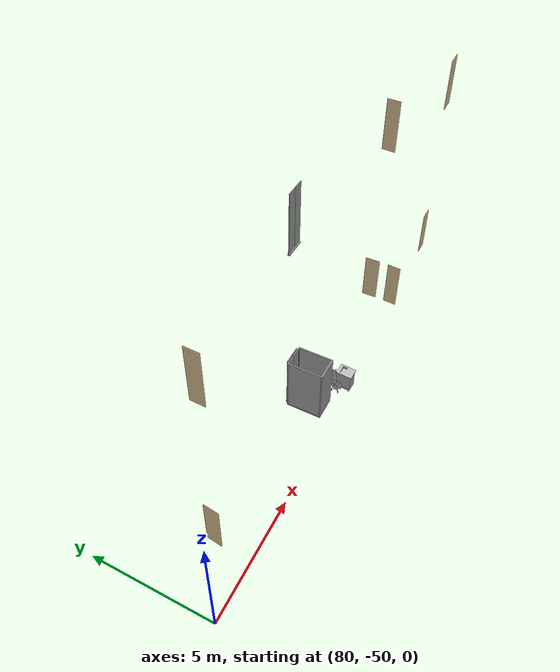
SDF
<sdf version="1.7">
 <world name="estce">
  <include>
   <name>OpenRobotics/CleaningSection</name>
   <uri>model://CleaningSection</uri>
   <pose>91.0523404894248 -49.39112411035458 0.0 0 0 1.5708</pose>
   <static>True</static>
  </include>
  <model name="bano012">
   <pose>82.44700350917586 -48.49807562310532 0.0 0 0 1.470619011720645</pose>
   <link name="right">
    <pose>0 0 1.11 0 0 0</pose>
    <visual name="right_visual">
     <geometry><box><size>0.6442041280268124 0.03 2.2</size></box></geometry>
     <material><ambient>0.5 0.25 0 0.6</ambient><diffuse>0.5 0.25 0 0.6</diffuse></material>
    </visual>
    <collision name="right_collision">
     <geometry><box><size>0.6442041280268124 0.03 2.2</size></box></geometry>
     <surface><contact><collide_bitmask>0x02</collide_bitmask></contact></surface>
    </collision>
    <inertial>
     <mass>50.0</mass>
     <inertia><ixx>20.17041666666667</ixx><iyy>21.895828994028278</iyy><izz>1.732912327361607</izz></inertia>
    </inertial>
   </link>
   <joint name="right_joint" type="revolute">
    <parent>world</parent>
    <child>right</child>
    <axis><xyz>0 0 -1</xyz><limit><lower>0</lower><upper>1.57</upper></limit></axis>
    <pose>0.3271020640134062 0 0 0 0 0</pose>
   </joint>
   <plugin name="door" filename="libdoor.so">
    <v_max_door>0.5</v_max_door>
    <a_max_door>0.3</a_max_door>
    <a_nom_door>0.15</a_nom_door>
    <dx_min_door>0.01</dx_min_door>
    <f_max_door>500.0</f_max_door>
    <door name="bano012" type="SwingDoor" left_joint_name="empty_joint" right_joint_name="right_joint"/>
   </plugin>
  </model>
  <model name="bano018">
   <pose>96.61255686161878 -48.44135738725127 0.0 0 0 1.5939053097456333</pose>
   <link name="right">
    <pose>0 0 1.11 0 0 0</pose>
    <visual name="right_visual">
     <geometry><box><size>0.6631448530400826 0.03 2.2</size></box></geometry>
     <material><ambient>0.5 0.25 0 0.6</ambient><diffuse>0.5 0.25 0 0.6</diffuse></material>
    </visual>
    <collision name="right_collision">
     <geometry><box><size>0.6631448530400826 0.03 2.2</size></box></geometry>
     <surface><contact><collide_bitmask>0x02</collide_bitmask></contact></surface>
    </collision>
    <inertial>
     <mass>50.0</mass>
     <inertia><ixx>20.17041666666667</ixx><iyy>21.999004567139806</iyy><izz>1.8360879004731367</izz></inertia>
    </inertial>
   </link>
   <joint name="right_joint" type="revolute">
    <parent>world</parent>
    <child>right</child>
    <axis><xyz>0 0 1</xyz><limit><lower>0</lower><upper>1.57</upper></limit></axis>
    <pose>0.3365724265200413 0 0 0 0 0</pose>
   </joint>
   <plugin name="door" filename="libdoor.so">
    <v_max_door>0.5</v_max_door>
    <a_max_door>0.3</a_max_door>
    <a_nom_door>0.15</a_nom_door>
    <dx_min_door>0.01</dx_min_door>
    <f_max_door>500.0</f_max_door>
    <door name="bano018" type="SwingDoor" left_joint_name="empty_joint" right_joint_name="right_joint"/>
   </plugin>
  </model>
  <model name="bano019">
   <pose>96.59748511829628 -49.48174535185072 0.0 0 0 1.495199436193495</pose>
   <link name="right">
    <pose>0 0 1.11 0 0 0</pose>
    <visual name="right_visual">
     <geometry><box><size>0.5950692042728132 0.03 2.2</size></box></geometry>
     <material><ambient>0.5 0.25 0 0.6</ambient><diffuse>0.5 0.25 0 0.6</diffuse></material>
    </visual>
    <collision name="right_collision">
     <geometry><box><size>0.5950692042728132 0.03 2.2</size></box></geometry>
     <surface><contact><collide_bitmask>0x02</collide_bitmask></contact></surface>
    </collision>
    <inertial>
     <mass>50.0</mass>
     <inertia><ixx>20.17041666666667</ixx><iyy>21.642113991141166</iyy><izz>1.479197324474496</izz></inertia>
    </inertial>
   </link>
   <joint name="right_joint" type="revolute">
    <parent>world</parent>
    <child>right</child>
    <axis><xyz>0 0 1</xyz><limit><lower>0</lower><upper>1.57</upper></limit></axis>
    <pose>0.3025346021364066 0 0 0 0 0</pose>
   </joint>
   <plugin name="door" filename="libdoor.so">
    <v_max_door>0.5</v_max_door>
    <a_max_door>0.3</a_max_door>
    <a_nom_door>0.15</a_nom_door>
    <dx_min_door>0.01</dx_min_door>
    <f_max_door>500.0</f_max_door>
    <door name="bano019" type="SwingDoor" left_joint_name="empty_joint" right_joint_name="right_joint"/>
   </plugin>
  </model>
  <model name="TD2012CI">
   <pose>101.0331451901359 -49.4272154927263 0.0 0 0 0.0</pose>
   <link name="right">
    <pose>0 0 1.11 0 0 0</pose>
    <visual name="right_visual">
     <geometry><box><size>0.6053715363713843 0.03 2.2</size></box></geometry>
     <material><ambient>0.5 0.25 0 0.6</ambient><diffuse>0.5 0.25 0 0.6</diffuse></material>
    </visual>
    <collision name="right_collision">
     <geometry><box><size>0.6053715363713843 0.03 2.2</size></box></geometry>
     <surface><contact><collide_bitmask>0x02</collide_bitmask></contact></surface>
    </collision>
    <inertial>
     <mass>50.0</mass>
     <inertia><ixx>20.17041666666667</ixx><iyy>21.693644571036046</iyy><izz>1.5307279043693762</izz></inertia>
    </inertial>
   </link>
   <joint name="right_joint" type="revolute">
    <parent>world</parent>
    <child>right</child>
    <axis><xyz>0 0 -1</xyz><limit><lower>0</lower><upper>1.57</upper></limit></axis>
    <pose>0.30768576818569215 0 0 0 0 0</pose>
   </joint>
   <plugin name="door" filename="libdoor.so">
    <v_max_door>0.5</v_max_door>
    <a_max_door>0.3</a_max_door>
    <a_nom_door>0.15</a_nom_door>
    <dx_min_door>0.01</dx_min_door>
    <f_max_door>500.0</f_max_door>
    <door name="TD2012CI" type="SwingDoor" left_joint_name="empty_joint" right_joint_name="right_joint"/>
   </plugin>
  </model>
  <model name="bano12">
   <pose>82.42250377956982 -48.55080670870155 8.0 0 0 1.549933353693263</pose>
   <link name="right">
    <pose>0 0 1.11 0 0 0</pose>
    <visual name="right_visual">
     <geometry><box><size>0.5266028313164499 0.03 2.2</size></box></geometry>
     <material><ambient>0.5 0.25 0 0.6</ambient><diffuse>0.5 0.25 0 0.6</diffuse></material>
    </visual>
    <collision name="right_collision">
     <geometry><box><size>0.5266028313164499 0.03 2.2</size></box></geometry>
     <surface><contact><collide_bitmask>0x02</collide_bitmask></contact></surface>
    </collision>
    <inertial>
     <mass>50.0</mass>
     <inertia><ixx>20.17041666666667</ixx><iyy>21.322127258127093</iyy><izz>1.1592105914604227</izz></inertia>
    </inertial>
   </link>
   <joint name="right_joint" type="revolute">
    <parent>world</parent>
    <child>right</child>
    <axis><xyz>0 0 -1</xyz><limit><lower>0</lower><upper>1.57</upper></limit></axis>
    <pose>0.26830141565822496 0 0 0 0 0</pose>
   </joint>
   <plugin name="door" filename="libdoor.so">
    <v_max_door>0.5</v_max_door>
    <a_max_door>0.3</a_max_door>
    <a_nom_door>0.15</a_nom_door>
    <dx_min_door>0.01</dx_min_door>
    <f_max_door>500.0</f_max_door>
    <door name="bano12" type="SwingDoor" left_joint_name="empty_joint" right_joint_name="right_joint"/>
   </plugin>
  </model>
  <model name="bano18">
   <pose>96.63959571975191 -48.52446806274959 8.0 0 0 1.5228293427319184</pose>
   <link name="right">
    <pose>0 0 1.11 0 0 0</pose>
    <visual name="right_visual">
     <geometry><box><size>0.5608595809617218 0.03 2.2</size></box></geometry>
     <material><ambient>0.5 0.25 0 0.6</ambient><diffuse>0.5 0.25 0 0.6</diffuse></material>
    </visual>
    <collision name="right_collision">
     <geometry><box><size>0.5608595809617218 0.03 2.2</size></box></geometry>
     <surface><contact><collide_bitmask>0x02</collide_bitmask></contact></surface>
    </collision>
    <inertial>
     <mass>50.0</mass>
     <inertia><ixx>20.17041666666667</ixx><iyy>21.477347789818996</iyy><izz>1.314431123152326</izz></inertia>
    </inertial>
   </link>
   <joint name="right_joint" type="revolute">
    <parent>world</parent>
    <child>right</child>
    <axis><xyz>0 0 1</xyz><limit><lower>0</lower><upper>1.57</upper></limit></axis>
    <pose>0.2854297904808609 0 0 0 0 0</pose>
   </joint>
   <plugin name="door" filename="libdoor.so">
    <v_max_door>0.5</v_max_door>
    <a_max_door>0.3</a_max_door>
    <a_nom_door>0.15</a_nom_door>
    <dx_min_door>0.01</dx_min_door>
    <f_max_door>500.0</f_max_door>
    <door name="bano18" type="SwingDoor" left_joint_name="empty_joint" right_joint_name="right_joint"/>
   </plugin>
  </model>
  <model name="TD2114CI">
   <pose>101.0554368297633 -49.45873664672891 8.0 0 0 0.030194498058427718</pose>
   <link name="right">
    <pose>0 0 1.11 0 0 0</pose>
    <visual name="right_visual">
     <geometry><box><size>0.6788441421442872 0.03 2.2</size></box></geometry>
     <material><ambient>0.5 0.25 0 0.6</ambient><diffuse>0.5 0.25 0 0.6</diffuse></material>
    </visual>
    <collision name="right_collision">
     <geometry><box><size>0.6788441421442872 0.03 2.2</size></box></geometry>
     <surface><contact><collide_bitmask>0x02</collide_bitmask></contact></surface>
    </collision>
    <inertial>
     <mass>50.0</mass>
     <inertia><ixx>20.17041666666667</ixx><iyy>22.08678903884839</iyy><izz>1.923872372181722</izz></inertia>
    </inertial>
   </link>
   <joint name="right_joint" type="revolute">
    <parent>world</parent>
    <child>right</child>
    <axis><xyz>0 0 -1</xyz><limit><lower>0</lower><upper>1.57</upper></limit></axis>
    <pose>0.3444220710721436 0 0 0 0 0</pose>
   </joint>
   <plugin name="door" filename="libdoor.so">
    <v_max_door>0.5</v_max_door>
    <a_max_door>0.3</a_max_door>
    <a_nom_door>0.15</a_nom_door>
    <dx_min_door>0.01</dx_min_door>
    <f_max_door>500.0</f_max_door>
    <door name="TD2114CI" type="SwingDoor" left_joint_name="empty_joint" right_joint_name="right_joint"/>
   </plugin>
  </model>
  <model name="ShaftDoor_lift1td0_L1_lift2_door">
   <pose>89.55510924323717 -47.90541029018162 0.0 0 0 0.0</pose>
   <link name="right_door">
    <pose>0.2 0 1.25 0 0 0</pose>
    <visual name="right_door_visual">
     <geometry><box><size>0.4 0.03 2.5</size></box></geometry>
     <material>
      <ambient>0.5 0.5 0.5 1</ambient>
      <diffuse>0.7 0.7 0.7 1</diffuse>
      <specular>0.6 0.6 0.6 1</specular>
      <emissive>0.1 0.1 0.1 1</emissive>
     </material>
    </visual>
    <collision name="right_door_collision">
     <geometry><box><size>0.4 0.03 2.5</size></box></geometry>
     <surface><contact><collide_bitmask>0x02</collide_bitmask></contact></surface>
    </collision>
   </link>
   <joint name="right_joint" type="prismatic">
    <parent>world</parent>
    <child>right_door</child>
    <axis><xyz>1 0 0</xyz><limit><lower>0</lower><upper>0.4</upper></limit></axis>
   </joint>
   <link name="left_door">
    <pose>-0.2 0 1.25 0 0 0</pose>
    <visual name="left_door_visual">
     <geometry><box><size>0.4 0.03 2.5</size></box></geometry>
     <material>
      <ambient>0.5 0.5 0.5 1</ambient>
      <diffuse>0.7 0.7 0.7 1</diffuse>
      <specular>0.6 0.6 0.6 1</specular>
      <emissive>0.1 0.1 0.1 1</emissive>
     </material>
    </visual>
    <collision name="left_door_collision">
     <geometry><box><size>0.4 0.03 2.5</size></box></geometry>
     <surface><contact><collide_bitmask>0x02</collide_bitmask></contact></surface>
    </collision>
   </link>
   <joint name="left_joint" type="prismatic">
    <parent>world</parent>
    <child>left_door</child>
    <axis><xyz>1 0 0</xyz><limit><lower>-0.4</lower><upper>0</upper></limit></axis>
   </joint>
   <link name="ramp">
    <pose>0 0 -0.025 0 0 0</pose>
    <visual name="ramp_visual">
     <geometry><box><size>0.8 0.1 0.05</size></box></geometry>
     <material>
      <ambient>0.5 0.5 0.5 1</ambient>
      <diffuse>0.7 0.7 0.7 1</diffuse>
      <specular>0.6 0.6 0.6 1</specular>
      <emissive>0.1 0.1 0.1 1</emissive>
     </material>
    </visual>
    <collision name="ramp_collision">
     <geometry><box><size>0.8 0.1 0.05</size></box></geometry>
     <surface><contact><collide_bitmask>0x02</collide_bitmask></contact></surface>
    </collision>
   </link>
   <joint name="ramp_joint" type="fixed"><parent>world</parent><child>ramp</child></joint>
   <plugin name="door" filename="libdoor.so">
    <v_max_door>0.3</v_max_door>
    <a_max_door>0.2</a_max_door>
    <a_nom_door>0.1</a_nom_door>
    <dx_min_door>0.0001</dx_min_door>
    <f_max_door>35.0</f_max_door>
    <door left_joint_name="left_joint" name="ShaftDoor_lift1td0_L1_lift2_door" right_joint_name="right_joint" type="DoubleSlidingDoor"/>
   </plugin>
  </model>
  <model name="ShaftDoor_lift1td0_L2_lift2_door">
   <pose>89.55510924323717 -47.90541029018162 8.0 0 0 0.0</pose>
   <link name="right_door">
    <pose>0.2 0 1.25 0 0 0</pose>
    <visual name="right_door_visual">
     <geometry><box><size>0.4 0.03 2.5</size></box></geometry>
     <material>
      <ambient>0.5 0.5 0.5 1</ambient>
      <diffuse>0.7 0.7 0.7 1</diffuse>
      <specular>0.6 0.6 0.6 1</specular>
      <emissive>0.1 0.1 0.1 1</emissive>
     </material>
    </visual>
    <collision name="right_door_collision">
     <geometry><box><size>0.4 0.03 2.5</size></box></geometry>
     <surface><contact><collide_bitmask>0x02</collide_bitmask></contact></surface>
    </collision>
   </link>
   <joint name="right_joint" type="prismatic">
    <parent>world</parent>
    <child>right_door</child>
    <axis><xyz>1 0 0</xyz><limit><lower>0</lower><upper>0.4</upper></limit></axis>
   </joint>
   <link name="left_door">
    <pose>-0.2 0 1.25 0 0 0</pose>
    <visual name="left_door_visual">
     <geometry><box><size>0.4 0.03 2.5</size></box></geometry>
     <material>
      <ambient>0.5 0.5 0.5 1</ambient>
      <diffuse>0.7 0.7 0.7 1</diffuse>
      <specular>0.6 0.6 0.6 1</specular>
      <emissive>0.1 0.1 0.1 1</emissive>
     </material>
    </visual>
    <collision name="left_door_collision">
     <geometry><box><size>0.4 0.03 2.5</size></box></geometry>
     <surface><contact><collide_bitmask>0x02</collide_bitmask></contact></surface>
    </collision>
   </link>
   <joint name="left_joint" type="prismatic">
    <parent>world</parent>
    <child>left_door</child>
    <axis><xyz>1 0 0</xyz><limit><lower>-0.4</lower><upper>0</upper></limit></axis>
   </joint>
   <link name="ramp">
    <pose>0 0 -0.025 0 0 0</pose>
    <visual name="ramp_visual">
     <geometry><box><size>0.8 0.1 0.05</size></box></geometry>
     <material>
      <ambient>0.5 0.5 0.5 1</ambient>
      <diffuse>0.7 0.7 0.7 1</diffuse>
      <specular>0.6 0.6 0.6 1</specular>
      <emissive>0.1 0.1 0.1 1</emissive>
     </material>
    </visual>
    <collision name="ramp_collision">
     <geometry><box><size>0.8 0.1 0.05</size></box></geometry>
     <surface><contact><collide_bitmask>0x02</collide_bitmask></contact></surface>
    </collision>
   </link>
   <joint name="ramp_joint" type="fixed"><parent>world</parent><child>ramp</child></joint>
   <plugin name="door" filename="libdoor.so">
    <v_max_door>0.3</v_max_door>
    <a_max_door>0.2</a_max_door>
    <a_nom_door>0.1</a_nom_door>
    <dx_min_door>0.0001</dx_min_door>
    <f_max_door>35.0</f_max_door>
    <door left_joint_name="left_joint" name="ShaftDoor_lift1td0_L2_lift2_door" right_joint_name="right_joint" type="DoubleSlidingDoor"/>
   </plugin>
  </model>
  <model name="lift1td0">
   <link name="platform">
    <inertial><mass>1200</mass><inertia><ixx>100.25</ixx><iyy>225.25</iyy><izz>325.0</izz></inertia></inertial>
    <visual name="floor_visual">
     <pose>0 0 -0.025 0 0 0</pose>
     <geometry><box><size>1.0 1.5 0.05</size></box></geometry>
     <material>
      <ambient>0.5 0.5 0.5 1</ambient>
      <diffuse>0.7 0.7 0.7 1</diffuse>
      <specular>0.6 0.6 0.6 1</specular>
      <emissive>0.1 0.1 0.1 1</emissive>
     </material>
    </visual>
    <collision name="floor_collision">
     <pose>0 0 -0.025 0 0 0</pose>
     <geometry><box><size>1.0 1.5 0.05</size></box></geometry>
     <surface><contact><collide_bitmask>0x01</collide_bitmask></contact></surface>
    </collision>
    <visual name="frontwall1_visual">
     <pose>-0.45 0.725 1.25 0 0 0</pose>
     <geometry><box><size>0.09999999999999998 0.05 2.5</size></box></geometry>
     <material>
      <ambient>0.5 0.5 0.5 1</ambient>
      <diffuse>0.7 0.7 0.7 1</diffuse>
      <specular>0.6 0.6 0.6 1</specular>
      <emissive>0.1 0.1 0.1 1</emissive>
     </material>
    </visual>
    <collision name="frontwall1_collision">
     <pose>-0.45 0.725 1.25 0 0 0</pose>
     <geometry><box><size>0.09999999999999998 0.05 2.5</size></box></geometry>
     <surface><contact><collide_bitmask>0x01</collide_bitmask></contact></surface>
    </collision>
    <visual name="frontwall2_visual">
     <pose>0.45 0.725 1.25 0 0 0</pose>
     <geometry><box><size>0.09999999999999998 0.05 2.5</size></box></geometry>
     <material>
      <ambient>0.5 0.5 0.5 1</ambient>
      <diffuse>0.7 0.7 0.7 1</diffuse>
      <specular>0.6 0.6 0.6 1</specular>
      <emissive>0.1 0.1 0.1 1</emissive>
     </material>
    </visual>
    <collision name="frontwall2_collision">
     <pose>0.45 0.725 1.25 0 0 0</pose>
     <geometry><box><size>0.09999999999999998 0.05 2.5</size></box></geometry>
     <surface><contact><collide_bitmask>0x01</collide_bitmask></contact></surface>
    </collision>
    <visual name="backwall1_visual">
     <pose>0.0 -0.725 1.25 0 0 0</pose>
     <geometry><box><size>1.0 0.05 2.5</size></box></geometry>
     <material>
      <ambient>0.5 0.5 0.5 1</ambient>
      <diffuse>0.7 0.7 0.7 1</diffuse>
      <specular>0.6 0.6 0.6 1</specular>
      <emissive>0.1 0.1 0.1 1</emissive>
     </material>
    </visual>
    <collision name="backwall1_collision">
     <pose>0.0 -0.725 1.25 0 0 0</pose>
     <geometry><box><size>1.0 0.05 2.5</size></box></geometry>
     <surface><contact><collide_bitmask>0x01</collide_bitmask></contact></surface>
    </collision>
    <visual name="leftwall1_visual">
     <pose>-0.475 0.0 1.25 0 0 1.5707963267948966</pose>
     <geometry><box><size>1.4 0.05 2.5</size></box></geometry>
     <material>
      <ambient>0.5 0.5 0.5 1</ambient>
      <diffuse>0.7 0.7 0.7 1</diffuse>
      <specular>0.6 0.6 0.6 1</specular>
      <emissive>0.1 0.1 0.1 1</emissive>
     </material>
    </visual>
    <collision name="leftwall1_collision">
     <pose>-0.475 0.0 1.25 0 0 1.5707963267948966</pose>
     <geometry><box><size>1.4 0.05 2.5</size></box></geometry>
     <surface><contact><collide_bitmask>0x01</collide_bitmask></contact></surface>
    </collision>
    <visual name="rightwall1_visual">
     <pose>0.475 0.0 1.25 0 0 1.5707963267948966</pose>
     <geometry><box><size>1.4 0.05 2.5</size></box></geometry>
     <material>
      <ambient>0.5 0.5 0.5 1</ambient>
      <diffuse>0.7 0.7 0.7 1</diffuse>
      <specular>0.6 0.6 0.6 1</specular>
      <emissive>0.1 0.1 0.1 1</emissive>
     </material>
    </visual>
    <collision name="rightwall1_collision">
     <pose>0.475 0.0 1.25 0 0 1.5707963267948966</pose>
     <geometry><box><size>1.4 0.05 2.5</size></box></geometry>
     <surface><contact><collide_bitmask>0x01</collide_bitmask></contact></surface>
    </collision>
   </link>
   <joint name="cabin_joint" type="prismatic">
    <parent>world</parent>
    <child>platform</child>
    <axis><xyz>0 0 1</xyz></axis>
   </joint>
   <model name="CabinDoor_lift1td0_lift2_door">
    <pose>0.0 0.725 0 0 0 0.0</pose>
    <link name="right_door">
     <pose>0.2 0 1.25 0 0 0</pose>
     <visual name="right_door_visual">
      <geometry><box><size>0.4 0.03 2.5</size></box></geometry>
      <material>
       <ambient>0.5 0.5 0.5 1</ambient>
       <diffuse>0.7 0.7 0.7 1</diffuse>
       <specular>0.6 0.6 0.6 1</specular>
       <emissive>0.1 0.1 0.1 1</emissive>
      </material>
     </visual>
     <collision name="right_door_collision">
      <geometry><box><size>0.4 0.03 2.5</size></box></geometry>
      <surface><contact><collide_bitmask>0x02</collide_bitmask></contact></surface>
     </collision>
    </link>
    <link name="platform">
     <inertial>
      <mass>0.001</mass>
      <inertia><ixx>1e-6</ixx><iyy>1e-6</iyy><izz>1e-6</izz><ixy>0</ixy><ixz>0</ixz><iyz>0</iyz></inertia>
     </inertial>
    </link>
    <joint name="right_joint" type="prismatic">
     <parent>platform</parent>
     <child>right_door</child>
     <axis><xyz>1 0 0</xyz><limit><lower>0</lower><upper>0.4</upper></limit></axis>
    </joint>
    <link name="left_door">
     <pose>-0.2 0 1.25 0 0 0</pose>
     <visual name="left_door_visual">
      <geometry><box><size>0.4 0.03 2.5</size></box></geometry>
      <material>
       <ambient>0.5 0.5 0.5 1</ambient>
       <diffuse>0.7 0.7 0.7 1</diffuse>
       <specular>0.6 0.6 0.6 1</specular>
       <emissive>0.1 0.1 0.1 1</emissive>
      </material>
     </visual>
     <collision name="left_door_collision">
      <geometry><box><size>0.4 0.03 2.5</size></box></geometry>
      <surface><contact><collide_bitmask>0x02</collide_bitmask></contact></surface>
     </collision>
    </link>
    <joint name="left_joint" type="prismatic">
     <parent>platform</parent>
     <child>left_door</child>
     <axis><xyz>1 0 0</xyz><limit><lower>-0.4</lower><upper>0</upper></limit></axis>
    </joint>
    <plugin name="door" filename="libdoor.so">
     <v_max_door>0.3</v_max_door>
     <a_max_door>0.2</a_max_door>
     <a_nom_door>0.1</a_nom_door>
     <dx_min_door>0.0001</dx_min_door>
     <f_max_door>35.0</f_max_door>
     <door left_joint_name="left_joint" name="CabinDoor_lift1td0_lift2_door" right_joint_name="right_joint" type="DoubleSlidingDoor"/>
    </plugin>
   </model>
   <plugin name="lift" filename="liblift.so">
    <lift_name>lift1td0</lift_name>
    <floor name="L1" elevation="0.0">
     <door_pair cabin_door="CabinDoor_lift1td0_lift2_door" shaft_door="ShaftDoor_lift1td0_L1_lift2_door"/>
    </floor>
    <floor name="L2" elevation="8.0">
     <door_pair cabin_door="CabinDoor_lift1td0_lift2_door" shaft_door="ShaftDoor_lift1td0_L2_lift2_door"/>
    </floor>
    <initial_floor>L1</initial_floor>
    <v_max_cabin>2.0</v_max_cabin>
    <a_max_cabin>1.2</a_max_cabin>
    <a_nom_cabin>1.0</a_nom_cabin>
    <dx_min_cabin>0.001</dx_min_cabin>
    <f_max_cabin>25323.0</f_max_cabin>
    <cabin_joint_name>cabin_joint</cabin_joint_name>
   </plugin>
   <pose>89.55510924323717 -48.70541029018162 0 0 0 0.0</pose>
  </model>
 </world>
</sdf>
